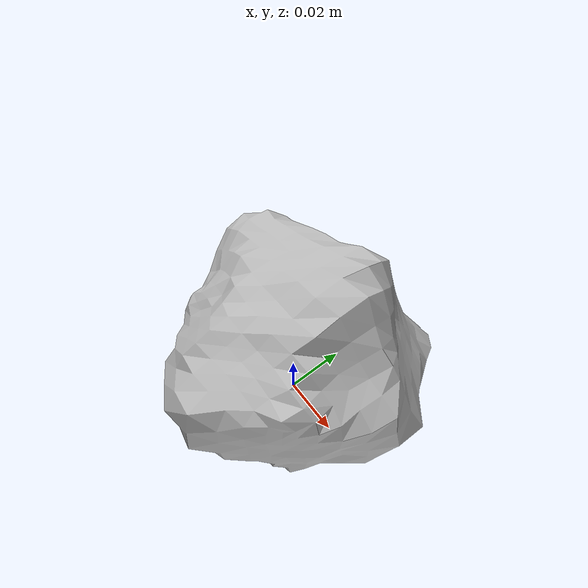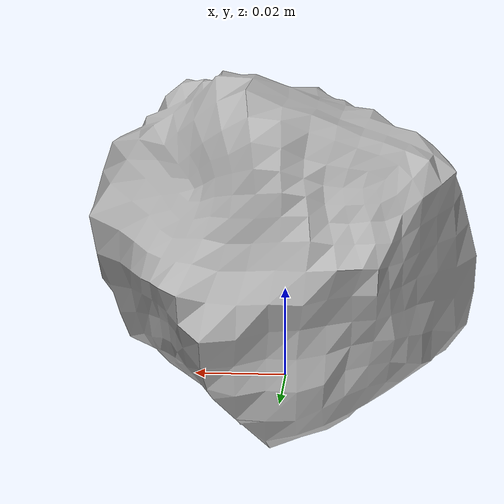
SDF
<?xml version='1.0'?>
<sdf version='1.4'>
  <model name="my_rock03">
    <static>0</static>
        <link name='link'>
        <pose>0 0 0 0 0 0</pose>

	<inertial>
          <mass>0.3</mass>
        </inertial>

        <visual name='visual'>
              <pose>0 0 .031 0 0 0</pose>
              <geometry>
                <mesh>
                  <uri>model://my_rock03/meshes/model.dae</uri>
                  <scale>0.06 0.06 0.06</scale>
                </mesh>
              </geometry>
              <material>
                <script>
                  <uri>model://my_rock03/materials/scripts</uri>
                  <uri>model://my_rock03/materials/textures</uri>
                  <name>myrock/Diffuse</name>
                </script>
              </material>
            </visual>

            <collision name='collision'>
          <geometry>
            <mesh>
               <uri>model://my_rock03/meshes/model.dae</uri>
		 <pose>0 0 .031 0 0 0</pose>
               <scale>0.06 0.06 0.06</scale>
             </mesh>
          </geometry>
          <max_contacts>10</max_contacts>
          <surface>
            <bounce>
              <restitution_coefficient>0.2</restitution_coefficient>
              <threshold>0</threshold>
            </bounce>
            <friction>
              <ode/>
            </friction>
            <contact>
              <ode>
                <max_vel>10</max_vel>
              </ode>
            </contact>
          </surface>
        </collision>

        <velocity_decay>
          <linear>0</linear>
          <angular>0</angular>
        </velocity_decay>
        <self_collide>0</self_collide>
        <kinematic>0</kinematic>
        <gravity>1</gravity>

          </link>
        </model>
</sdf>
